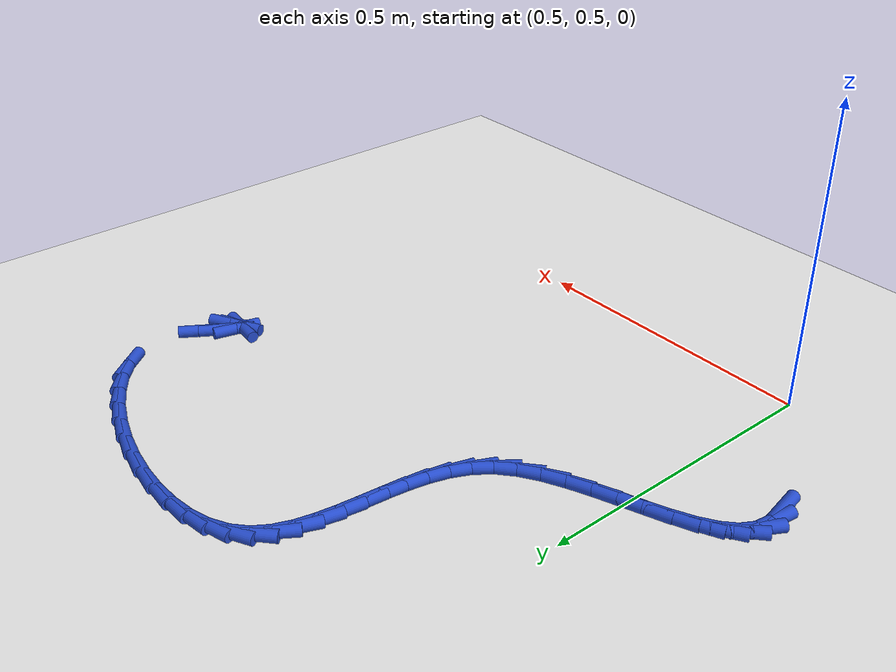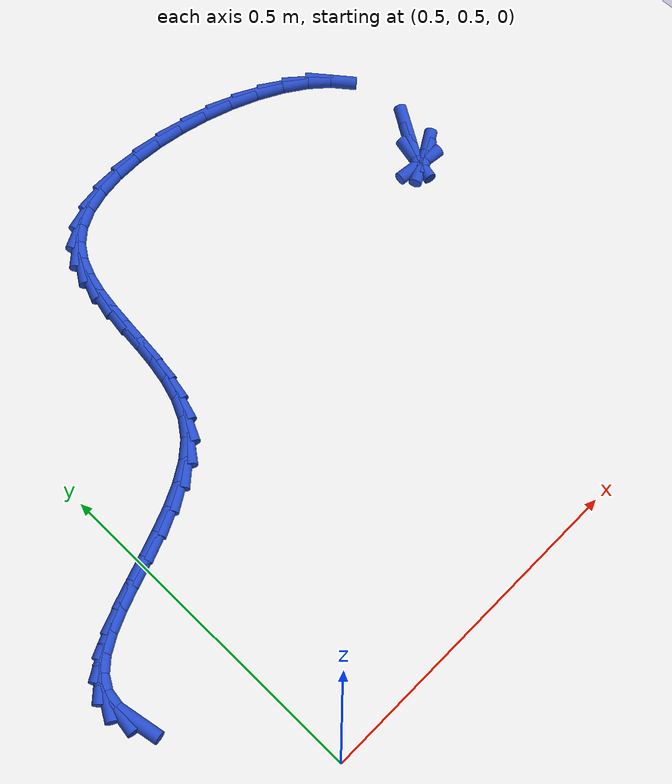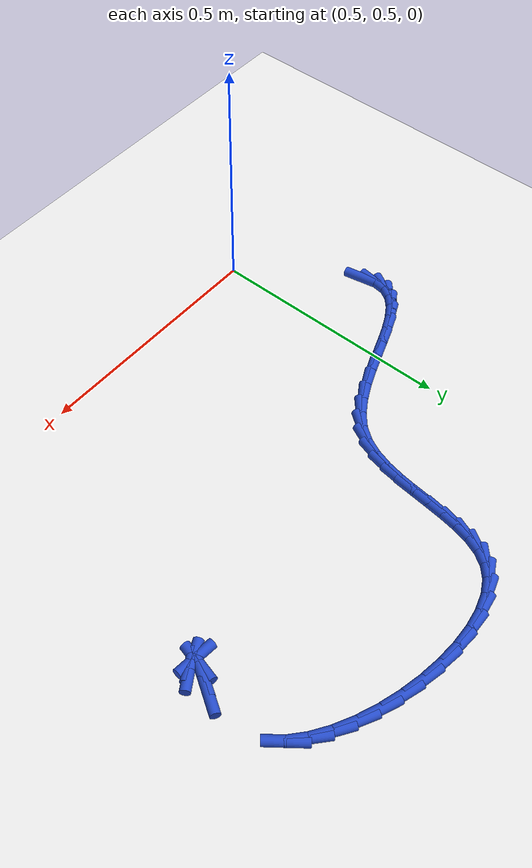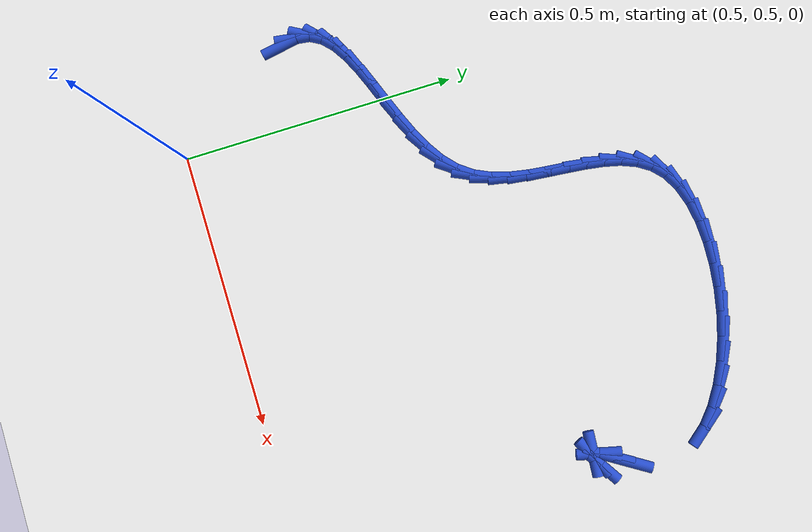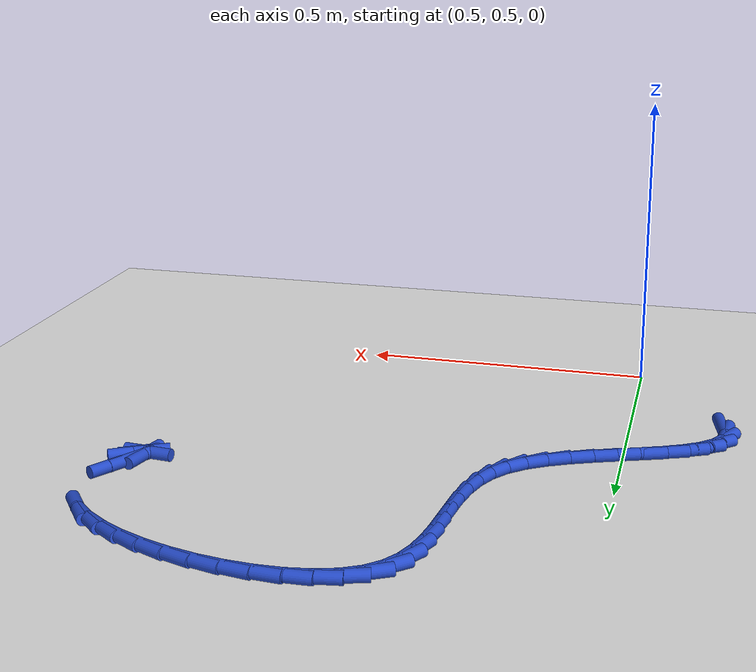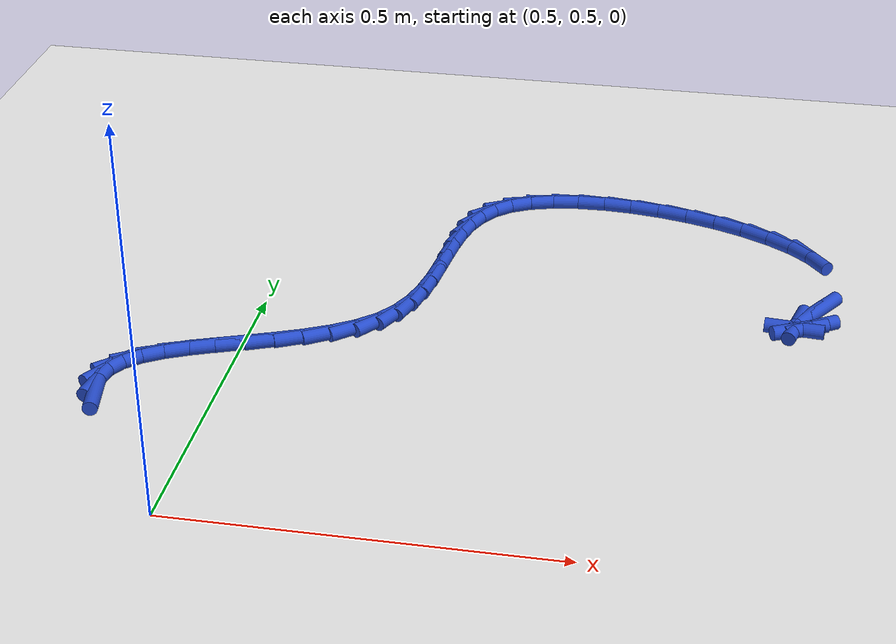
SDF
<sdf version="1.6">
 <world name="default">
  <model name="ground_plane">
   <static>1</static>
   <link name="link">
    <collision name="collision">
     <geometry><plane><normal>0 0 1</normal><size>100 100</size></plane></geometry>
     <surface><friction><ode><mu>100</mu><mu2>50</mu2></ode></friction></surface>
    </collision>
    <visual name="visual">
     <cast_shadows>0</cast_shadows>
     <geometry><plane><normal>0 0 1</normal><size>100 100</size></plane></geometry>
     <material>
      <script><uri>file://media/materials/scripts/gazebo.material</uri><name>Gazebo/WhiteGlow</name></script>
     </material>
    </visual>
   </link>
  </model>
  <model name="line">
   <link name="link_27">
    <pose>0.3512079826000164 0.7260828732033762 0.01 0 1.57 -1.3832395769975614</pose>
    <collision name="collision">
     <geometry><cylinder><radius>0.01</radius><length>0.08</length></cylinder></geometry>
    </collision>
    <visual name="visual">
     <material>
      <script><name>Gazebo/Blue</name><uri>file://media/materials/scripts/gazebo.material</uri></script>
     </material>
     <geometry><cylinder><radius>0.01</radius><length>0.08</length></cylinder></geometry>
    </visual>
   </link>
   <link name="link_28">
    <pose>0.34578391400248076 0.7546625812563622 0.01 0 1.57 1.43109762839957</pose>
    <collision name="collision">
     <geometry><cylinder><radius>0.01</radius><length>0.08</length></cylinder></geometry>
    </collision>
    <visual name="visual">
     <material>
      <script><name>Gazebo/Blue</name><uri>file://media/materials/scripts/gazebo.material</uri></script>
     </material>
     <geometry><cylinder><radius>0.01</radius><length>0.08</length></cylinder></geometry>
    </visual>
   </link>
   <link name="link_29">
    <pose>0.3492647476257447 0.77941700260853 0.01 0 1.57 1.0473393882004238</pose>
    <collision name="collision">
     <geometry><cylinder><radius>0.01</radius><length>0.08</length></cylinder></geometry>
    </collision>
    <visual name="visual">
     <material>
      <script><name>Gazebo/Blue</name><uri>file://media/materials/scripts/gazebo.material</uri></script>
     </material>
     <geometry><cylinder><radius>0.01</radius><length>0.08</length></cylinder></geometry>
    </visual>
   </link>
   <link name="link_30">
    <pose>0.3614665502316619 0.8005580690355452 0.01 0 1.57 0.7492100019741645</pose>
    <collision name="collision">
     <geometry><cylinder><radius>0.01</radius><length>0.08</length></cylinder></geometry>
    </collision>
    <visual name="visual">
     <material>
      <script><name>Gazebo/Blue</name><uri>file://media/materials/scripts/gazebo.material</uri></script>
     </material>
     <geometry><cylinder><radius>0.01</radius><length>0.08</length></cylinder></geometry>
    </visual>
   </link>
   <link name="link_31">
    <pose>0.3810406773047011 0.8187643938802767 0.01 0 1.57 0.5572461036282345</pose>
    <collision name="collision">
     <geometry><cylinder><radius>0.01</radius><length>0.08</length></cylinder></geometry>
    </collision>
    <visual name="visual">
     <material>
      <script><name>Gazebo/Blue</name><uri>file://media/materials/scripts/gazebo.material</uri></script>
     </material>
     <geometry><cylinder><radius>0.01</radius><length>0.08</length></cylinder></geometry>
    </visual>
   </link>
   <link name="link_32">
    <pose>0.40663818812882147 0.8347147091684993 0.01 0 1.57 0.44328282518599665</pose>
    <collision name="collision">
     <geometry><cylinder><radius>0.01</radius><length>0.08</length></cylinder></geometry>
    </collision>
    <visual name="visual">
     <material>
      <script><name>Gazebo/Blue</name><uri>file://media/materials/scripts/gazebo.material</uri></script>
     </material>
     <geometry><cylinder><radius>0.01</radius><length>0.08</length></cylinder></geometry>
    </visual>
   </link>
   <link name="link_33">
    <pose>0.4369101419879813 0.8490877469259875 0.01 0 1.57 0.3814171817636546</pose>
    <collision name="collision">
     <geometry><cylinder><radius>0.01</radius><length>0.08</length></cylinder></geometry>
    </collision>
    <visual name="visual">
     <material>
      <script><name>Gazebo/Blue</name><uri>file://media/materials/scripts/gazebo.material</uri></script>
     </material>
     <geometry><cylinder><radius>0.01</radius><length>0.08</length></cylinder></geometry>
    </visual>
   </link>
   <link name="link_34">
    <pose>0.4705075981661396 0.8625622391785156 0.01 0 1.57 0.3566599593140726</pose>
    <collision name="collision">
     <geometry><cylinder><radius>0.01</radius><length>0.08</length></cylinder></geometry>
    </collision>
    <visual name="visual">
     <material>
      <script><name>Gazebo/Blue</name><uri>file://media/materials/scripts/gazebo.material</uri></script>
     </material>
     <geometry><cylinder><radius>0.01</radius><length>0.08</length></cylinder></geometry>
    </visual>
   </link>
   <link name="link_35">
    <pose>0.506081615947255 0.8758169179518586 0.01 0 1.57 0.36210807143996954</pose>
    <collision name="collision">
     <geometry><cylinder><radius>0.01</radius><length>0.08</length></cylinder></geometry>
    </collision>
    <visual name="visual">
     <material>
      <script><name>Gazebo/Blue</name><uri>file://media/materials/scripts/gazebo.material</uri></script>
     </material>
     <geometry><cylinder><radius>0.01</radius><length>0.08</length></cylinder></geometry>
    </visual>
   </link>
   <link name="link_36">
    <pose>0.542283254615286 0.8895305152717905 0.01 0 1.57 0.3964178140099533</pose>
    <collision name="collision">
     <geometry><cylinder><radius>0.01</radius><length>0.08</length></cylinder></geometry>
    </collision>
    <visual name="visual">
     <material>
      <script><name>Gazebo/Blue</name><uri>file://media/materials/scripts/gazebo.material</uri></script>
     </material>
     <geometry><cylinder><radius>0.01</radius><length>0.08</length></cylinder></geometry>
    </visual>
   </link>
   <link name="link_37">
    <pose>0.5777635734541913 0.9043817631640856 0.01 0 1.57 0.46275170157153556</pose>
    <collision name="collision">
     <geometry><cylinder><radius>0.01</radius><length>0.08</length></cylinder></geometry>
    </collision>
    <visual name="visual">
     <material>
      <script><name>Gazebo/Blue</name><uri>file://media/materials/scripts/gazebo.material</uri></script>
     </material>
     <geometry><cylinder><radius>0.01</radius><length>0.08</length></cylinder></geometry>
    </visual>
   </link>
   <link name="link_38">
    <pose>0.61117363174793 0.9210493936545189 0.01 0 1.57 0.5685700040137551</pose>
    <collision name="collision">
     <geometry><cylinder><radius>0.01</radius><length>0.08</length></cylinder></geometry>
    </collision>
    <visual name="visual">
     <material>
      <script><name>Gazebo/Blue</name><uri>file://media/materials/scripts/gazebo.material</uri></script>
     </material>
     <geometry><cylinder><radius>0.01</radius><length>0.08</length></cylinder></geometry>
    </visual>
   </link>
   <link name="link_39">
    <pose>0.6411644887804606 0.940212138768865 0.01 0 1.57 0.7247877709195721</pose>
    <collision name="collision">
     <geometry><cylinder><radius>0.01</radius><length>0.08</length></cylinder></geometry>
    </collision>
    <visual name="visual">
     <material>
      <script><name>Gazebo/Blue</name><uri>file://media/materials/scripts/gazebo.material</uri></script>
     </material>
     <geometry><cylinder><radius>0.01</radius><length>0.08</length></cylinder></geometry>
    </visual>
   </link>
   <link name="link_40">
    <pose>0.6663872038357417 0.9625487305328979 0.01 0 1.57 0.9323769082939156</pose>
    <collision name="collision">
     <geometry><cylinder><radius>0.01</radius><length>0.08</length></cylinder></geometry>
    </collision>
    <visual name="visual">
     <material>
      <script><name>Gazebo/Blue</name><uri>file://media/materials/scripts/gazebo.material</uri></script>
     </material>
     <geometry><cylinder><radius>0.01</radius><length>0.08</length></cylinder></geometry>
    </visual>
   </link>
   <link name="link_41">
    <pose>0.6857218123373217 0.98860299633883 0.01 0 1.57 1.1287810906283307</pose>
    <collision name="collision">
     <geometry><cylinder><radius>0.01</radius><length>0.08</length></cylinder></geometry>
    </collision>
    <visual name="visual">
     <material>
      <script><name>Gazebo/Blue</name><uri>file://media/materials/scripts/gazebo.material</uri></script>
     </material>
     <geometry><cylinder><radius>0.01</radius><length>0.08</length></cylinder></geometry>
    </visual>
   </link>
   <link name="link_42">
    <pose>0.6996281199836105 1.0179880188714803 0.01 0 1.57 1.2786721919331157</pose>
    <collision name="collision">
     <geometry><cylinder><radius>0.01</radius><length>0.08</length></cylinder></geometry>
    </collision>
    <visual name="visual">
     <material>
      <script><name>Gazebo/Blue</name><uri>file://media/materials/scripts/gazebo.material</uri></script>
     </material>
     <geometry><cylinder><radius>0.01</radius><length>0.08</length></cylinder></geometry>
    </visual>
   </link>
   <link name="link_43">
    <pose>0.7092322436329972 1.0499243138738164 0.01 0 1.57 1.3822863222796995</pose>
    <collision name="collision">
     <geometry><cylinder><radius>0.01</radius><length>0.08</length></cylinder></geometry>
    </collision>
    <visual name="visual">
     <material>
      <script><name>Gazebo/Blue</name><uri>file://media/materials/scripts/gazebo.material</uri></script>
     </material>
     <geometry><cylinder><radius>0.01</radius><length>0.08</length></cylinder></geometry>
    </visual>
   </link>
   <link name="link_44">
    <pose>0.7156626454405246 1.0836310153230637 0.01 0 1.57 1.4450762394214134</pose>
    <collision name="collision">
     <geometry><cylinder><radius>0.01</radius><length>0.08</length></cylinder></geometry>
    </collision>
    <visual name="visual">
     <material>
      <script><name>Gazebo/Blue</name><uri>file://media/materials/scripts/gazebo.material</uri></script>
     </material>
     <geometry><cylinder><radius>0.01</radius><length>0.08</length></cylinder></geometry>
    </visual>
   </link>
   <link name="link_45">
    <pose>0.720047787561235 1.118327257196448 0.01 0 1.57 1.471755927799328</pose>
    <collision name="collision">
     <geometry><cylinder><radius>0.01</radius><length>0.08</length></cylinder></geometry>
    </collision>
    <visual name="visual">
     <material>
      <script><name>Gazebo/Blue</name><uri>file://media/materials/scripts/gazebo.material</uri></script>
     </material>
     <geometry><cylinder><radius>0.01</radius><length>0.08</length></cylinder></geometry>
    </visual>
   </link>
   <link name="link_46">
    <pose>0.7235161321501716 1.1532321734711946 0.01 0 1.57 1.4640173737341098</pose>
    <collision name="collision">
     <geometry><cylinder><radius>0.01</radius><length>0.08</length></cylinder></geometry>
    </collision>
    <visual name="visual">
     <material>
      <script><name>Gazebo/Blue</name><uri>file://media/materials/scripts/gazebo.material</uri></script>
     </material>
     <geometry><cylinder><radius>0.01</radius><length>0.08</length></cylinder></geometry>
    </visual>
   </link>
   <link name="link_47">
    <pose>0.7271961413623765 1.1875648981245277 0.01 0 1.57 1.4197367973958306</pose>
    <collision name="collision">
     <geometry><cylinder><radius>0.01</radius><length>0.08</length></cylinder></geometry>
    </collision>
    <visual name="visual">
     <material>
      <script><name>Gazebo/Blue</name><uri>file://media/materials/scripts/gazebo.material</uri></script>
     </material>
     <geometry><cylinder><radius>0.01</radius><length>0.08</length></cylinder></geometry>
    </visual>
   </link>
   <link name="link_48">
    <pose>0.7322162773528923 1.2205445651336737 0.01 0 1.57 1.332624558508975</pose>
    <collision name="collision">
     <geometry><cylinder><radius>0.01</radius><length>0.08</length></cylinder></geometry>
    </collision>
    <visual name="visual">
     <material>
      <script><name>Gazebo/Blue</name><uri>file://media/materials/scripts/gazebo.material</uri></script>
     </material>
     <geometry><cylinder><radius>0.01</radius><length>0.08</length></cylinder></geometry>
    </visual>
   </link>
   <link name="link_49">
    <pose>0.7397050022767621 1.2513903084758575 0.01 0 1.57 1.1929658197713058</pose>
    <collision name="collision">
     <geometry><cylinder><radius>0.01</radius><length>0.08</length></cylinder></geometry>
    </collision>
    <visual name="visual">
     <material>
      <script><name>Gazebo/Blue</name><uri>file://media/materials/scripts/gazebo.material</uri></script>
     </material>
     <geometry><cylinder><radius>0.01</radius><length>0.08</length></cylinder></geometry>
    </visual>
   </link>
   <link name="link_50">
    <pose>0.7507907782890281 1.2793212621283048 0.01 0 1.57 0.9927305503378063</pose>
    <collision name="collision">
     <geometry><cylinder><radius>0.01</radius><length>0.08</length></cylinder></geometry>
    </collision>
    <visual name="visual">
     <material>
      <script><name>Gazebo/Blue</name><uri>file://media/materials/scripts/gazebo.material</uri></script>
     </material>
     <geometry><cylinder><radius>0.01</radius><length>0.08</length></cylinder></geometry>
    </visual>
   </link>
   <link name="link_51">
    <pose>0.7666020675447331 1.3035565600682402 0.01 0 1.57 0.7397249864323698</pose>
    <collision name="collision">
     <geometry><cylinder><radius>0.01</radius><length>0.08</length></cylinder></geometry>
    </collision>
    <visual name="visual">
     <material>
      <script><name>Gazebo/Blue</name><uri>file://media/materials/scripts/gazebo.material</uri></script>
     </material>
     <geometry><cylinder><radius>0.01</radius><length>0.08</length></cylinder></geometry>
    </visual>
   </link>
   <link name="link_52">
    <pose>0.7882581621080893 1.323319594890137 0.01 0 1.57 0.4900271819980556</pose>
    <collision name="collision">
     <geometry><cylinder><radius>0.01</radius><length>0.08</length></cylinder></geometry>
    </collision>
    <visual name="visual">
     <material>
      <script><name>Gazebo/Blue</name><uri>file://media/materials/scripts/gazebo.material</uri></script>
     </material>
     <geometry><cylinder><radius>0.01</radius><length>0.08</length></cylinder></geometry>
    </visual>
   </link>
   <link name="link_53">
    <pose>0.8161242084082029 1.3381839866472875 0.01 0 1.57 0.2970957197492684</pose>
    <collision name="collision">
     <geometry><cylinder><radius>0.01</radius><length>0.08</length></cylinder></geometry>
    </collision>
    <visual name="visual">
     <material>
      <script><name>Gazebo/Blue</name><uri>file://media/materials/scripts/gazebo.material</uri></script>
     </material>
     <geometry><cylinder><radius>0.01</radius><length>0.08</length></cylinder></geometry>
    </visual>
   </link>
   <link name="link_54">
    <pose>0.8492610731573459 1.3483290667430914 0.01 0 1.57 0.15057838577999863</pose>
    <collision name="collision">
     <geometry><cylinder><radius>0.01</radius><length>0.08</length></cylinder></geometry>
    </collision>
    <visual name="visual">
     <material>
      <script><name>Gazebo/Blue</name><uri>file://media/materials/scripts/gazebo.material</uri></script>
     </material>
     <geometry><cylinder><radius>0.01</radius><length>0.08</length></cylinder></geometry>
    </visual>
   </link>
   <link name="link_55">
    <pose>0.8865999655675696 1.3539943799067367 0.01 0 1.57 0.03519712088303328</pose>
    <collision name="collision">
     <geometry><cylinder><radius>0.01</radius><length>0.08</length></cylinder></geometry>
    </collision>
    <visual name="visual">
     <material>
      <script><name>Gazebo/Blue</name><uri>file://media/materials/scripts/gazebo.material</uri></script>
     </material>
     <geometry><cylinder><radius>0.01</radius><length>0.08</length></cylinder></geometry>
    </visual>
   </link>
   <link name="link_56">
    <pose>0.9270720948509248 1.355419470867413 0.01 0 1.57 -0.06047609094073945</pose>
    <collision name="collision">
     <geometry><cylinder><radius>0.01</radius><length>0.08</length></cylinder></geometry>
    </collision>
    <visual name="visual">
     <material>
      <script><name>Gazebo/Blue</name><uri>file://media/materials/scripts/gazebo.material</uri></script>
     </material>
     <geometry><cylinder><radius>0.01</radius><length>0.08</length></cylinder></geometry>
    </visual>
   </link>
   <link name="link_57">
    <pose>0.9696086702194622 1.3528438843543087 0.01 0 1.57 -0.14454862027172444</pose>
    <collision name="collision">
     <geometry><cylinder><radius>0.01</radius><length>0.08</length></cylinder></geometry>
    </collision>
    <visual name="visual">
     <material>
      <script><name>Gazebo/Blue</name><uri>file://media/materials/scripts/gazebo.material</uri></script>
     </material>
     <geometry><cylinder><radius>0.01</radius><length>0.08</length></cylinder></geometry>
    </visual>
   </link>
   <link name="link_58">
    <pose>1.0131409008852335 1.3465071650966127 0.01 0 1.57 -0.22306609857474466</pose>
    <collision name="collision">
     <geometry><cylinder><radius>0.01</radius><length>0.08</length></cylinder></geometry>
    </collision>
    <visual name="visual">
     <material>
      <script><name>Gazebo/Blue</name><uri>file://media/materials/scripts/gazebo.material</uri></script>
     </material>
     <geometry><cylinder><radius>0.01</radius><length>0.08</length></cylinder></geometry>
    </visual>
   </link>
   <link name="link_59">
    <pose>1.0565999960602894 1.336648857823514 0.01 0 1.57 -0.3010805111296582</pose>
    <collision name="collision">
     <geometry><cylinder><radius>0.01</radius><length>0.08</length></cylinder></geometry>
    </collision>
    <visual name="visual">
     <material>
      <script><name>Gazebo/Blue</name><uri>file://media/materials/scripts/gazebo.material</uri></script>
     </material>
     <geometry><cylinder><radius>0.01</radius><length>0.08</length></cylinder></geometry>
    </visual>
   </link>
   <link name="link_60">
    <pose>1.0989171649566802 1.3235085072642012 0.01 0 1.57 -0.38351773801062394</pose>
    <collision name="collision">
     <geometry><cylinder><radius>0.01</radius><length>0.08</length></cylinder></geometry>
    </collision>
    <visual name="visual">
     <material>
      <script><name>Gazebo/Blue</name><uri>file://media/materials/scripts/gazebo.material</uri></script>
     </material>
     <geometry><cylinder><radius>0.01</radius><length>0.08</length></cylinder></geometry>
    </visual>
   </link>
   <link name="link_61">
    <pose>1.1390236167864578 1.307325658147863 0.01 0 1.57 -0.47600304385480163</pose>
    <collision name="collision">
     <geometry><cylinder><radius>0.01</radius><length>0.08</length></cylinder></geometry>
    </collision>
    <visual name="visual">
     <material>
      <script><name>Gazebo/Blue</name><uri>file://media/materials/scripts/gazebo.material</uri></script>
     </material>
     <geometry><cylinder><radius>0.01</radius><length>0.08</length></cylinder></geometry>
    </visual>
   </link>
   <link name="link_62">
    <pose>1.1758505607616736 1.2883398552036889 0.01 0 1.57 -0.5857991990873849</pose>
    <collision name="collision">
     <geometry><cylinder><radius>0.01</radius><length>0.08</length></cylinder></geometry>
    </collision>
    <visual name="visual">
     <material>
      <script><name>Gazebo/Blue</name><uri>file://media/materials/scripts/gazebo.material</uri></script>
     </material>
     <geometry><cylinder><radius>0.01</radius><length>0.08</length></cylinder></geometry>
    </visual>
   </link>
   <link name="link_63">
    <pose>1.208329206094377 1.2667906431608669 0.01 0 1.57 -0.7228803003452667</pose>
    <collision name="collision">
     <geometry><cylinder><radius>0.01</radius><length>0.08</length></cylinder></geometry>
    </collision>
    <visual name="visual">
     <material>
      <script><name>Gazebo/Blue</name><uri>file://media/materials/scripts/gazebo.material</uri></script>
     </material>
     <geometry><cylinder><radius>0.01</radius><length>0.08</length></cylinder></geometry>
    </visual>
   </link>
   <link name="link_64">
    <pose>1.2353907619966202 1.2429175667485863 0.01 0 1.57 -0.9005402769997615</pose>
    <collision name="collision">
     <geometry><cylinder><radius>0.01</radius><length>0.08</length></cylinder></geometry>
    </collision>
    <visual name="visual">
     <material>
      <script><name>Gazebo/Blue</name><uri>file://media/materials/scripts/gazebo.material</uri></script>
     </material>
     <geometry><cylinder><radius>0.01</radius><length>0.08</length></cylinder></geometry>
    </visual>
   </link>
   <link name="link_69">
    <pose>1.2533442007404147 1.0976979793979984 0.01 0 1.57 1.0071582033349646</pose>
    <collision name="collision">
     <geometry><cylinder><radius>0.01</radius><length>0.08</length></cylinder></geometry>
    </collision>
    <visual name="visual">
     <material>
      <script><name>Gazebo/Blue</name><uri>file://media/materials/scripts/gazebo.material</uri></script>
     </material>
     <geometry><cylinder><radius>0.01</radius><length>0.08</length></cylinder></geometry>
    </visual>
   </link>
   <link name="link_70">
    <pose>1.235679075652324 1.0697481273988851 0.01 0 1.57 1.019825382333706</pose>
    <collision name="collision">
     <geometry><cylinder><radius>0.01</radius><length>0.08</length></cylinder></geometry>
    </collision>
    <visual name="visual">
     <material>
      <script><name>Gazebo/Blue</name><uri>file://media/materials/scripts/gazebo.material</uri></script>
     </material>
     <geometry><cylinder><radius>0.01</radius><length>0.08</length></cylinder></geometry>
    </visual>
   </link>
   <link name="link_71">
    <pose>1.2234204404681743 1.049797283249335 0.01 0 1.57 1.3300005908872918</pose>
    <collision name="collision">
     <geometry><cylinder><radius>0.01</radius><length>0.08</length></cylinder></geometry>
    </collision>
    <visual name="visual">
     <material>
      <script><name>Gazebo/Blue</name><uri>file://media/materials/scripts/gazebo.material</uri></script>
     </material>
     <geometry><cylinder><radius>0.01</radius><length>0.08</length></cylinder></geometry>
    </visual>
   </link>
   <link name="link_72">
    <pose>1.221027924146676 1.0400541906435077 0.01 0 1.57 -0.08962997798281555</pose>
    <collision name="collision">
     <geometry><cylinder><radius>0.01</radius><length>0.08</length></cylinder></geometry>
    </collision>
    <visual name="visual">
     <material>
      <script><name>Gazebo/Blue</name><uri>file://media/materials/scripts/gazebo.material</uri></script>
     </material>
     <geometry><cylinder><radius>0.01</radius><length>0.08</length></cylinder></geometry>
    </visual>
   </link>
   <link name="link_73">
    <pose>1.2278039807345142 1.039445221241442 0.01 0 1.57 0.45170516217936424</pose>
    <collision name="collision">
     <geometry><cylinder><radius>0.01</radius><length>0.08</length></cylinder></geometry>
    </collision>
    <visual name="visual">
     <material>
      <script><name>Gazebo/Blue</name><uri>file://media/materials/scripts/gazebo.material</uri></script>
     </material>
     <geometry><cylinder><radius>0.01</radius><length>0.08</length></cylinder></geometry>
    </visual>
   </link>
   <link name="link_74">
    <pose>1.2426925044056536 1.0466685351495937 0.01 0 1.57 0.5598502319994845</pose>
    <collision name="collision">
     <geometry><cylinder><radius>0.01</radius><length>0.08</length></cylinder></geometry>
    </collision>
    <visual name="visual">
     <material>
      <script><name>Gazebo/Blue</name><uri>file://media/materials/scripts/gazebo.material</uri></script>
     </material>
     <geometry><cylinder><radius>0.01</radius><length>0.08</length></cylinder></geometry>
    </visual>
   </link>
  </model>
 </world>
</sdf>
